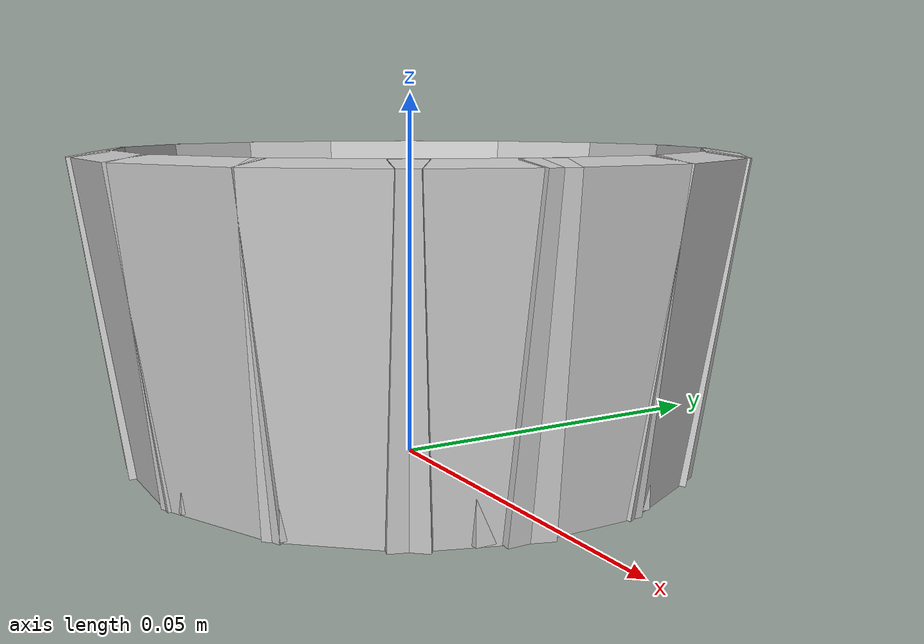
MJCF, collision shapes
<mujoco model="glazed_rim_porcelain_ramekin">
  <compiler angle="radian" inertiagrouprange="0 0" autolimits="true" />
  <asset>
    <texture file="../assets/stable_scanned_objects/glazed_rim_porcelain_ramekin/texture.png" name="tex-glazed_rim_porcelain_ramekin" type="2d" />
    <material name="glazed_rim_porcelain_ramekin" reflectance="0.5" texrepeat="1 1" texture="tex-glazed_rim_porcelain_ramekin" texuniform="false" />
    <mesh file="../assets/stable_scanned_objects/glazed_rim_porcelain_ramekin/visual/glazed_rim_porcelain_ramekin_vis.msh" name="glazed_rim_porcelain_ramekin_vis" scale="1.0 1.0 1.0" />
  </asset>
  <worldbody>
    <body name="object">
      <geom solimp="0.998 0.998 0.001" solref="0.001 1" density="100" friction="0.95 0.3 0.1" type="mesh" mesh="glazed_rim_porcelain_ramekin_vis" conaffinity="0" contype="0" group="1" material="glazed_rim_porcelain_ramekin" />
      <geom solimp="0.998 0.998 0.001" solref="0.001 1" density="100" friction="0.95 0.3 0.1" type="box" pos="-0.00000 -0.00000 0.00413" quat="0.50000 0.50000 -0.50000 0.50000" size="0.00319 0.02436 0.02436" group="0" rgba="0.8 0.8 0.8 0.3" />
      <geom solimp="0.998 0.998 0.001" solref="0.001 1" density="100" friction="0.95 0.3 0.1" type="box" pos="0.00000 -0.03824 0.02166" quat="0.05274 -0.70514 -0.70514 -0.05274" size="0.00260 0.00948 0.02085" group="0" rgba="0.8 0.8 0.8 0.3" />
      <geom solimp="0.998 0.998 0.001" solref="0.001 1" density="100" friction="0.95 0.3 0.1" type="box" pos="-0.00103 0.03822 0.02166" quat="0.69559 -0.05345 0.05203 0.71456" size="0.00260 0.00948 0.02085" group="0" rgba="0.8 0.8 0.8 0.3" />
      <geom solimp="0.998 0.998 0.001" solref="0.001 1" density="100" friction="0.95 0.3 0.1" type="box" pos="0.03823 0.00069 0.02166" quat="0.99717 -0.00067 0.07458 0.00894" size="0.00260 0.00948 0.02085" group="0" rgba="0.8 0.8 0.8 0.3" />
      <geom solimp="0.998 0.998 0.001" solref="0.001 1" density="100" friction="0.95 0.3 0.1" type="box" pos="-0.03823 -0.00043 0.02166" quat="0.00560 0.07459 0.00042 -0.99720" size="0.00260 0.00948 0.02085" group="0" rgba="0.8 0.8 0.8 0.3" />
      <geom solimp="0.998 0.998 0.001" solref="0.001 1" density="100" friction="0.95 0.3 0.1" type="box" pos="-0.03823 -0.00043 0.02166" quat="0.00560 0.07459 0.00042 -0.99720" size="0.00260 0.00948 0.02085" group="0" rgba="0.8 0.8 0.8 0.3" />
      <geom solimp="0.998 0.998 0.001" solref="0.001 1" density="100" friction="0.95 0.3 0.1" type="box" pos="-0.03485 -0.01573 0.02166" quat="0.07291 -0.20986 0.97488 0.01570" size="0.00260 0.00948 0.02085" group="0" rgba="0.8 0.8 0.8 0.3" />
      <geom solimp="0.998 0.998 0.001" solref="0.001 1" density="100" friction="0.95 0.3 0.1" type="box" pos="-0.02624 -0.02782 0.02166" quat="0.39505 0.06848 0.02954 -0.91563" size="0.00260 0.00948 0.02085" group="0" rgba="0.8 0.8 0.8 0.3" />
      <geom solimp="0.998 0.998 0.001" solref="0.001 1" density="100" friction="0.95 0.3 0.1" type="box" pos="-0.01352 -0.03577 0.02166" quat="0.56692 0.06136 0.04240 -0.82039" size="0.00260 0.00948 0.02085" group="0" rgba="0.8 0.8 0.8 0.3" />
      <geom solimp="0.998 0.998 0.001" solref="0.001 1" density="100" friction="0.95 0.3 0.1" type="box" pos="0.01660 -0.03444 0.02166" quat="0.03967 -0.84445 0.53042 0.06316" size="0.00260 0.00948 0.02085" group="0" rgba="0.8 0.8 0.8 0.3" />
      <geom solimp="0.998 0.998 0.001" solref="0.001 1" density="100" friction="0.95 0.3 0.1" type="box" pos="0.02949 -0.02434 0.02166" quat="0.02522 -0.93844 0.33729 0.07018" size="0.00260 0.00948 0.02085" group="0" rgba="0.8 0.8 0.8 0.3" />
      <geom solimp="0.998 0.998 0.001" solref="0.001 1" density="100" friction="0.95 0.3 0.1" type="box" pos="0.03627 -0.01210 0.02166" quat="0.01195 -0.98432 0.15984 0.07362" size="0.00260 0.00948 0.02085" group="0" rgba="0.8 0.8 0.8 0.3" />
      <geom solimp="0.998 0.998 0.001" solref="0.001 1" density="100" friction="0.95 0.3 0.1" type="box" pos="0.03436 0.01678 0.02166" quat="0.97159 -0.01680 0.07267 0.22462" size="0.00260 0.00948 0.02085" group="0" rgba="0.8 0.8 0.8 0.3" />
      <geom solimp="0.998 0.998 0.001" solref="0.001 1" density="100" friction="0.95 0.3 0.1" type="box" pos="0.02540 0.02858 0.02166" quat="0.03056 0.90972 0.40847 -0.06804" size="0.00260 0.00948 0.02085" group="0" rgba="0.8 0.8 0.8 0.3" />
      <geom solimp="0.998 0.998 0.001" solref="0.001 1" density="100" friction="0.95 0.3 0.1" type="box" pos="0.01202 0.03630 0.02166" quat="0.04367 0.80841 0.58388 -0.06046" size="0.00260 0.00948 0.02085" group="0" rgba="0.8 0.8 0.8 0.3" />
      <geom solimp="0.998 0.998 0.001" solref="0.001 1" density="100" friction="0.95 0.3 0.1" type="box" pos="-0.01724 0.03413 0.02166" quat="0.52256 -0.06352 0.03908 0.84934" size="0.00260 0.00948 0.02085" group="0" rgba="0.8 0.8 0.8 0.3" />
      <geom solimp="0.998 0.998 0.001" solref="0.001 1" density="100" friction="0.95 0.3 0.1" type="box" pos="-0.02979 0.02397 0.02166" quat="0.33139 -0.07035 0.02478 0.94054" size="0.00260 0.00948 0.02085" group="0" rgba="0.8 0.8 0.8 0.3" />
      <geom solimp="0.998 0.998 0.001" solref="0.001 1" density="100" friction="0.95 0.3 0.1" type="box" pos="-0.03632 0.01194 0.02166" quat="0.15768 -0.07364 0.01179 0.98467" size="0.00260 0.00948 0.02085" group="0" rgba="0.8 0.8 0.8 0.3" />
      <geom solimp="0.998 0.998 0.001" solref="0.001 1" density="100" friction="0.95 0.3 0.1" type="box" pos="-0.02820 0.00000 0.00413" quat="0.50000 0.50000 0.50000 -0.50000" size="0.00319 0.00373 0.02436" group="0" rgba="0.8 0.8 0.8 0.3" />
      <geom solimp="0.998 0.998 0.001" solref="0.001 1" density="100" friction="0.95 0.3 0.1" type="box" pos="0.00057 -0.02674 0.00413" quat="0.70707 -0.00752 0.70707 0.00752" size="0.00319 0.00373 0.02436" group="0" rgba="0.8 0.8 0.8 0.3" />
      <geom solimp="0.998 0.998 0.001" solref="0.001 1" density="100" friction="0.95 0.3 0.1" type="box" pos="0.00087 0.02673 0.00413" quat="0.01150 -0.70701 0.01150 0.70701" size="0.00319 0.00373 0.02436" group="0" rgba="0.8 0.8 0.8 0.3" />
      <geom solimp="0.998 0.998 0.001" solref="0.001 1" density="100" friction="0.95 0.3 0.1" type="box" pos="-0.03172 0.00000 0.00413" quat="0.50000 0.50000 0.50000 -0.50000" size="0.00319 0.00373 0.01209" group="0" rgba="0.8 0.8 0.8 0.3" />
      <geom solimp="0.998 0.998 0.001" solref="0.001 1" density="100" friction="0.95 0.3 0.1" type="box" pos="0.03291 -0.00000 0.00413" quat="0.50000 0.50000 0.50000 -0.50000" size="0.00319 0.00373 0.01209" group="0" rgba="0.8 0.8 0.8 0.3" />
      <geom solimp="0.998 0.998 0.001" solref="0.001 1" density="100" friction="0.95 0.3 0.1" type="box" pos="-0.00038 -0.03290 0.00413" quat="0.00404 -0.70710 0.00404 0.70710" size="0.00319 0.00373 0.01209" group="0" rgba="0.8 0.8 0.8 0.3" />
      <geom solimp="0.998 0.998 0.001" solref="0.001 1" density="100" friction="0.95 0.3 0.1" type="box" pos="0.00085 0.03290 0.00413" quat="0.70705 0.00914 0.70705 -0.00914" size="0.00319 0.00373 0.01209" group="0" rgba="0.8 0.8 0.8 0.3" />
      <joint type="free" damping="0.0005" name="joint0" />
    </body>
  </worldbody>
</mujoco>
